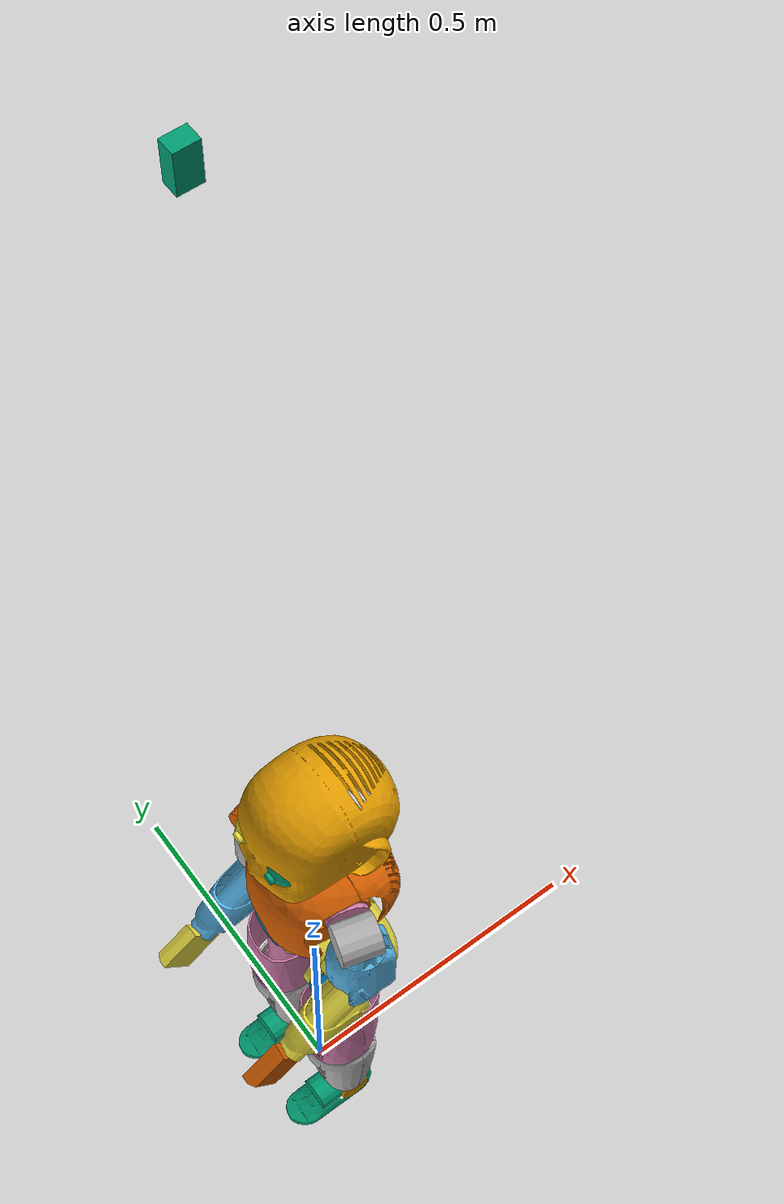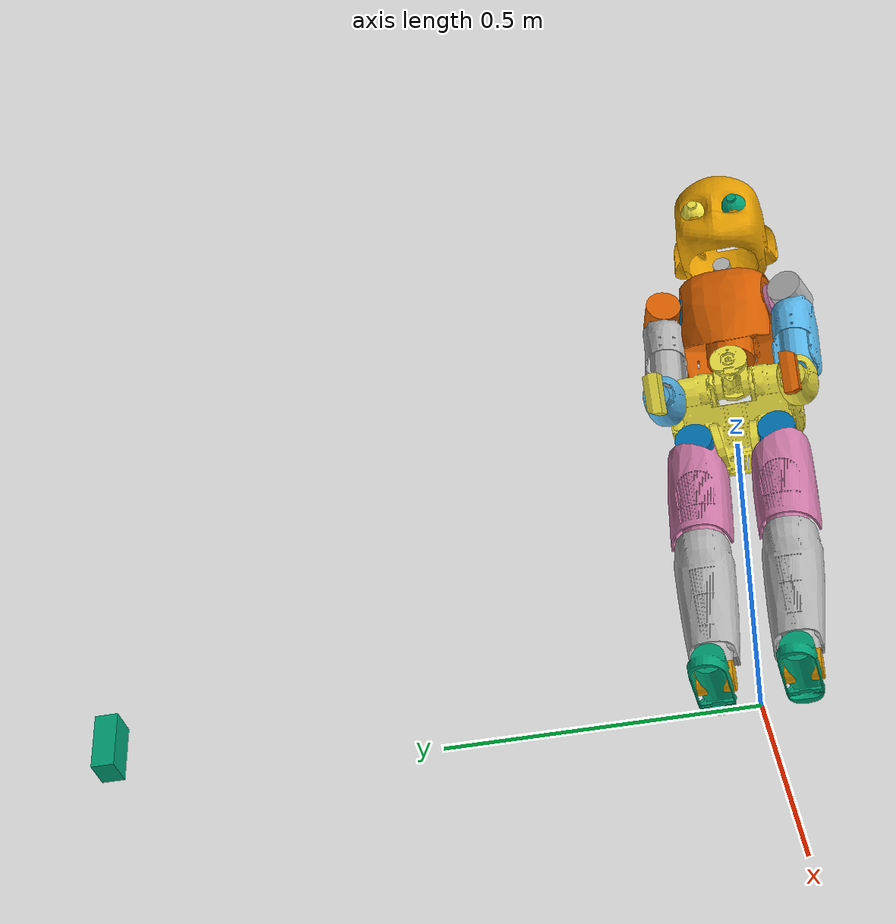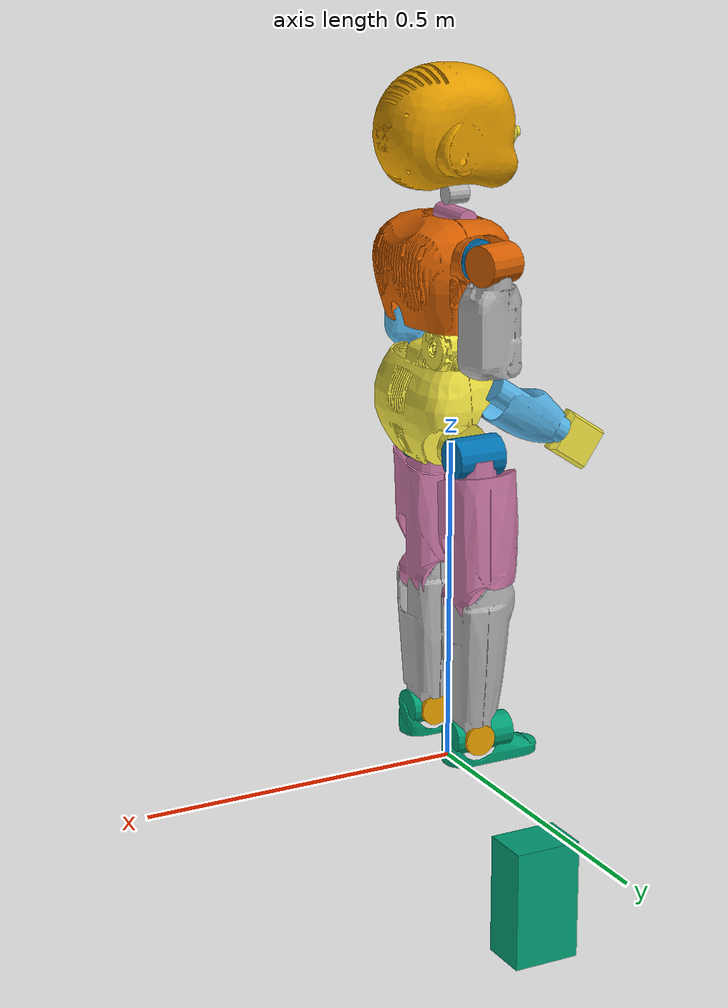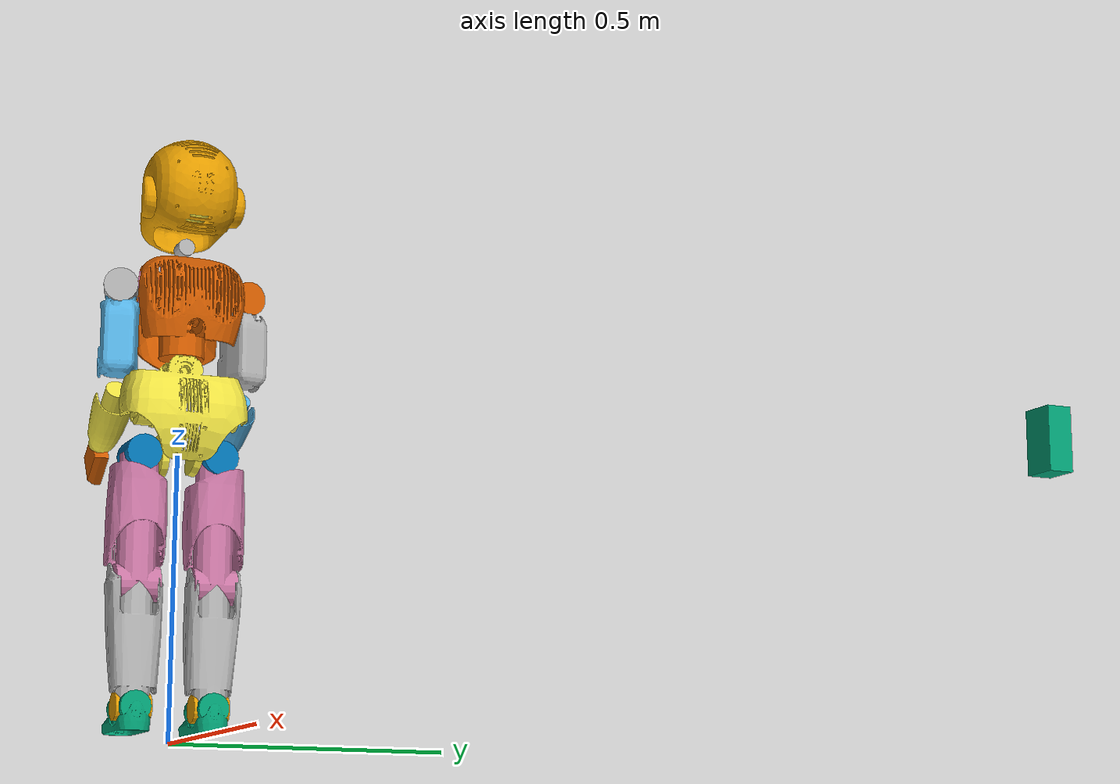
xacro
<?xml version="1.0"?>
<robot name="iCub"
       xmlns:xacro="http://www.ros.org/wiki/xacro">

  <!-- World for Gazebo simulation -->
  <link name ="world"/>
  <link name ="icub_base_link"/>
  <joint name="icub_base_joint" type="fixed">
      <parent link="world" />
      <child link = "icub_base_link" />
      <origin xyz="0 0 0" rpy="0 0 -1.57079" />
  </joint>

  <xacro:include filename="$(find demonstrator6_description)/urdf/icub/macro_icub.urdf.xacro" />
  <!-- instantiate with a base link to attach it to -->
  <xacro:icub parent="icub_base_link"/>

</robot>

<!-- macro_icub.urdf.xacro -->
<robot xmlns:xacro="http://ros.org/wiki/xacro">
  <xacro:macro name="icub" params="parent">
    <joint name="root_joint" type="fixed" >
      <origin xyz="0 0 0" rpy="0 0 0"/>
      <parent link="${parent}" />
      <child link="root_link" />
    </joint>
    <joint name="l_hip_pitch" type="revolute">
      <parent link="root_link"/>
      <child link="l_hip_1"/>
      <origin rpy="0       1.57079 -1.57079" xyz="0.0681  0   0.4971"/>
      <axis xyz="0 -1  0"/>
      <limit effort="84.0" lower="-0.767945" upper="2.30383" velocity="100.0"/>
    </joint>
    <joint name="l_hip_roll" type="revolute">
      <parent link="l_hip_1"/>
      <child link="l_hip_2"/>
      <origin rpy="1.20394 -1.57079  1.93764" xyz="0 0 0"/>
      <axis xyz="1 0 0"/>
      <limit effort="84.0" lower="-2.07694" upper="0.296706" velocity="100.0"/>
    </joint>
    <joint name="l_leg_ft_sensor" type="fixed">
      <parent link="l_hip_2"/>
      <child link="l_hip_3"/>
      <origin rpy="0 0 0" xyz="0     0     0.0665"/>
      <axis xyz="0 0 0"/>
      <limit effort="0.0" lower="0.0" upper="0.0" velocity="0.0"/>
    </joint>
    <joint name="l_hip_yaw" type="revolute">
      <parent link="l_hip_3"/>
      <child link="l_upper_leg"/>
      <origin rpy="-1.5708  0      0" xyz="0      0     -0.0665"/>
      <axis xyz="0 1 0"/>
      <limit effort="40.0" lower="-1.37881" upper="1.37881" velocity="100.0"/>
    </joint>
    <joint name="l_knee" type="revolute">
      <parent link="l_upper_leg"/>
      <child link="l_lower_leg"/>
      <origin rpy="3.14159 0      1.5708" xyz="0     -0.2236  0"/>
      <axis xyz="0  0 -1"/>
      <limit effort="30.0" lower="-2.18166" upper="0.401426" velocity="100.0"/>
    </joint>
    <joint name="l_ankle_pitch" type="revolute">
      <parent link="l_lower_leg"/>
      <child link="l_ankle_1"/>
      <origin rpy="-1.5708  0      0" xyz="-0.213  0     0"/>
      <axis xyz="0 -1  0"/>
      <limit effort="24.0" lower="-0.733038" upper="0.366519" velocity="100.0"/>
    </joint>
    <joint name="l_ankle_roll" type="revolute">
      <parent link="l_ankle_1"/>
      <child link="l_ankle_2"/>
      <origin rpy="-2.64933 -1.57078  2.64933" xyz="0 0 0"/>
      <axis xyz="1 0 0"/>
      <limit effort="11.0" lower="-0.418879" upper="0.418879" velocity="100.0"/>
    </joint>
    <joint name="l_foot_ft_sensor" type="fixed">
      <parent link="l_ankle_2"/>
      <child link="l_foot"/>
      <origin rpy="0 0 0" xyz="0    0    0.037"/>
      <axis xyz="0 0 0"/>
      <limit effort="0.0" lower="0.0" upper="0.0" velocity="0.0"/>
    </joint>
    <joint name="r_hip_pitch" type="revolute">
      <parent link="root_link"/>
      <child link="r_hip_1"/>
      <origin rpy="3.14159  1.57079 -1.57079" xyz="-0.0681  0   0.4971"/>
      <axis xyz="0 1 0"/>
      <limit effort="84.0" lower="-0.767945" upper="2.30383" velocity="100.0"/>
    </joint>
    <joint name="r_hip_roll" type="revolute">
      <parent link="r_hip_1"/>
      <child link="r_hip_2"/>
      <origin rpy="1.93764 1.57079 1.93764" xyz="0 0 0"/>
      <axis xyz="-1  0  0"/>
      <limit effort="84.0" lower="-2.07694" upper="0.296706" velocity="100.0"/>
    </joint>
    <joint name="r_leg_ft_sensor" type="fixed">
      <parent link="r_hip_2"/>
      <child link="r_hip_3"/>
      <origin rpy="0 0 0" xyz="0     0     0.0665"/>
      <axis xyz="0 0 0"/>
      <limit effort="0.0" lower="0.0" upper="0.0" velocity="0.0"/>
    </joint>
    <joint name="r_hip_yaw" type="revolute">
      <parent link="r_hip_3"/>
      <child link="r_upper_leg"/>
      <origin rpy="-1.5708  0      0" xyz="0      0     -0.0665"/>
      <axis xyz="0 -1  0"/>
      <limit effort="40.0" lower="-1.37881" upper="1.37881" velocity="100.0"/>
    </joint>
    <joint name="r_knee" type="revolute">
      <parent link="r_upper_leg"/>
      <child link="r_lower_leg"/>
      <origin rpy="3.14158 0      1.5708" xyz="0     -0.2236  0"/>
      <axis xyz="0  0 -1"/>
      <limit effort="30.0" lower="-2.18166" upper="0.401426" velocity="100.0"/>
    </joint>
    <joint name="r_ankle_pitch" type="revolute">
      <parent link="r_lower_leg"/>
      <child link="r_ankle_1"/>
      <origin rpy="1.5708 0     0" xyz="-0.213  0     0"/>
      <axis xyz="0 1 0"/>
      <limit effort="24.0" lower="-0.733038" upper="0.366519" velocity="100.0"/>
    </joint>
    <joint name="r_ankle_roll" type="revolute">
      <parent link="r_ankle_1"/>
      <child link="r_ankle_2"/>
      <origin rpy="-0.67357  1.57079  2.46801" xyz="0 0 0"/>
      <axis xyz="-1  0  0"/>
      <limit effort="11.0" lower="-0.418879" upper="0.418879" velocity="100.0"/>
    </joint>
    <joint name="r_foot_ft_sensor" type="fixed">
      <parent link="r_ankle_2"/>
      <child link="r_foot"/>
      <origin rpy="0 0 0" xyz="0    0    0.037"/>
      <axis xyz="0 0 0"/>
      <limit effort="0.0" lower="0.0" upper="0.0" velocity="0.0"/>
    </joint>
    <joint name="torso_pitch" type="revolute">
      <parent link="root_link"/>
      <child link="torso_1"/>
      <origin rpy="3.14159 -1.57079  1.57079" xyz="0  0  0.617"/>
      <axis xyz="0 1 0"/>
      <limit effort="36.0" lower="-0.383972" upper="1.46608" velocity="100.0"/>
    </joint>
    <joint name="torso_roll" type="revolute">
      <parent link="torso_1"/>
      <child link="torso_2"/>
      <origin rpy="1.57079  0      -1.5708" xyz="0.032 0    0"/>
      <axis xyz="0 1 0"/>
      <limit effort="80.0" lower="-0.680678" upper="0.680678" velocity="100.0"/>
    </joint>
    <joint name="torso_yaw" type="revolute">
      <parent link="torso_2"/>
      <child link="chest"/>
      <origin rpy="-1.57079  0      -1.5708" xyz="0     -0.0055  0"/>
      <axis xyz="0 -1  0"/>
      <limit effort="80.0" lower="-1.02974" upper="1.02974" velocity="100.0"/>
    </joint>
    <joint name="l_shoulder_pitch" type="revolute">
      <parent link="chest"/>
      <child link="l_shoulder_1"/>
      <origin rpy="1.30899 0      1.57079" xyz="0.00525  0.1433  -0.11026"/>
      <axis xyz="0 -1  0"/>
      <limit effort="84.0" lower="-1.65806" upper="0.0872665" velocity="100.0"/>
    </joint>
    <joint name="l_shoulder_roll" type="revolute">
      <parent link="l_shoulder_1"/>
      <child link="l_shoulder_2"/>
      <origin rpy="1.5708   0      -1.57079" xyz="0 0 0"/>
      <axis xyz="0 1 0"/>
      <limit effort="84.0" lower="0.0" upper="2.80649" velocity="100.0"/>
    </joint>
    <joint name="l_shoulder_yaw" type="revolute">
      <parent link="l_shoulder_2"/>
      <child link="l_shoulder_3"/>
      <origin rpy="0    0    1.309" xyz="0 0 0"/>
      <axis xyz="0 0 1"/>
      <limit effort="34.0" lower="-0.645772" upper="1.74533" velocity="100.0"/>
    </joint>
    <joint name="l_arm_ft_sensor" type="fixed">
      <parent link="l_shoulder_3"/>
      <child link="l_upper_arm"/>
      <origin rpy="0 0 0" xyz="0.015 0    0.068"/>
      <axis xyz="0 0 0"/>
      <limit effort="0.0" lower="0.0" upper="0.0" velocity="0.0"/>
    </joint>
    <joint name="l_elbow" type="revolute">
      <parent link="l_upper_arm"/>
      <child link="l_elbow_1"/>
      <origin rpy="0 0 0" xyz="0      0      0.08428"/>
      <axis xyz="0 1 0"/>
      <limit effort="20.0" lower="0.0959931" upper="1.85005" velocity="100.0"/>
    </joint>
    <joint name="l_wrist_prosup" type="revolute">
      <parent link="l_elbow_1"/>
      <child link="l_forearm"/>
      <origin rpy="1.57079  0      -1.5708" xyz="-0.015  0     0"/>
      <axis xyz="0 1 0"/>
      <limit effort="0.45" lower="-0.872665" upper="0.872665" velocity="100.0"/>
    </joint>
    <joint name="l_wrist_pitch" type="revolute">
      <parent link="l_forearm"/>
      <child link="l_wrist_1"/>
      <origin rpy="1.5708  0      1.57079" xyz="0     0.1373 0"/>
      <axis xyz="0 1 0"/>
      <limit effort="0.65" lower="-1.13446" upper="0.174533" velocity="100.0"/>
    </joint>
    <joint name="l_wrist_yaw" type="revolute">
      <parent link="l_wrist_1"/>
      <child link="l_hand"/>
      <origin rpy="0 0 0" xyz="0 0 0"/>
      <axis xyz="0 0 1"/>
      <limit effort="0.65" lower="-0.436332" upper="0.436332" velocity="100.0"/>
    </joint>
    <joint name="neck_pitch" type="revolute">
      <parent link="chest"/>
      <child link="neck_1"/>
      <origin rpy="1.57079 0      1.57079" xyz="0.00231 0.1933  0"/>
      <axis xyz="0 1 0"/>
      <limit effort="-1.0" lower="-0.698132" upper="0.523599" velocity="0.0"/>
    </joint>
    <joint name="neck_roll" type="revolute">
      <parent link="neck_1"/>
      <child link="neck_2"/>
      <origin rpy="-1.5708  0     -1.5708" xyz="0.0095 0     0"/>
      <axis xyz="0 -1  0"/>
      <limit effort="-1.0" lower="-1.22173" upper="1.0472" velocity="0.0"/>
    </joint>
    <joint name="neck_yaw" type="revolute">
      <parent link="neck_2"/>
      <child link="head"/>
      <origin rpy="-1.5708   0       1.57079" xyz="0 0 0"/>
      <axis xyz="0 -1  0"/>
      <limit effort="-1.0" lower="-0.959931" upper="0.959931" velocity="0.0"/>
    </joint>
    <joint name="eye_tilt" type="revolute">
      <parent link="head"/>
      <child link="eye_frame"/>
      <origin rpy="0 0 0" xyz="-0.04859 -0.11204  0"/>
      <axis xyz="0 0 1"/>
      <limit effort="-1.0" lower="-0.942477796" upper="0.942477796" velocity="0.0"/>
    </joint>
    <joint name="left_eye_pan" type="revolute">
      <parent link="eye_frame"/>
      <child link="left_eye"/>
      <origin rpy="0 0 0" xyz="0     0    -0.034"/>
      <axis xyz="0 -1  0"/>
      <limit effort="-1.0" lower="-0.942477796" upper="0.942477796" velocity="0.0"/>
    </joint>
    <joint name="right_eye_pan" type="revolute">
      <parent link="eye_frame"/>
      <child link="right_eye"/>
      <origin rpy="0 0 0" xyz="0    0    0.034"/>
      <axis xyz="0 -1  0"/>
      <limit effort="-1.0" lower="-0.942477796" upper="0.942477796" velocity="0.0"/>
    </joint>
    <joint name="r_shoulder_pitch" type="revolute">
      <parent link="chest"/>
      <child link="r_shoulder_1"/>
      <origin rpy="-1.30899  0       1.57079" xyz="0.00525 0.1433  0.11025"/>
      <axis xyz="0 1 0"/>
      <limit effort="84.0" lower="-1.65806" upper="0.0872665" velocity="100.0"/>
    </joint>
    <joint name="r_shoulder_roll" type="revolute">
      <parent link="r_shoulder_1"/>
      <child link="r_shoulder_2"/>
      <origin rpy="-1.57079  0      -1.57079" xyz="0 0 0"/>
      <axis xyz="0 -1  0"/>
      <limit effort="84.0" lower="0.0" upper="2.80649" velocity="100.0"/>
    </joint>
    <joint name="r_shoulder_yaw" type="revolute">
      <parent link="r_shoulder_2"/>
      <child link="r_shoulder_3"/>
      <origin rpy="3.14158 0      1.309" xyz="0 0 0"/>
      <axis xyz="0  0 -1"/>
      <limit effort="34.0" lower="-0.645772" upper="1.74533" velocity="100.0"/>
    </joint>
    <joint name="r_arm_ft_sensor" type="fixed">
      <parent link="r_shoulder_3"/>
      <child link="r_upper_arm"/>
      <origin rpy="0 0 0" xyz="0.015 0    0.068"/>
      <axis xyz="0 0 0"/>
      <limit effort="0.0" lower="0.0" upper="0.0" velocity="0.0"/>
    </joint>
    <joint name="r_elbow" type="revolute">
      <parent link="r_upper_arm"/>
      <child link="r_elbow_1"/>
      <origin rpy="3.14158 0      3.14159" xyz="0      0      0.08428"/>
      <axis xyz="0 1 0"/>
      <limit effort="20.0" lower="0.0959931" upper="1.85005" velocity="100.0"/>
    </joint>
    <joint name="r_wrist_prosup" type="revolute">
      <parent link="r_elbow_1"/>
      <child link="r_forearm"/>
      <origin rpy="1.57079  0      -1.5708" xyz="0.015 0    0"/>
      <axis xyz="0 1 0"/>
      <limit effort="0.45" lower="-0.872665" upper="0.872665" velocity="100.0"/>
    </joint>
    <joint name="r_wrist_pitch" type="revolute">
      <parent link="r_forearm"/>
      <child link="r_wrist_1"/>
      <origin rpy="1.5708  0      1.57079" xyz="0     -0.1373  0"/>
      <axis xyz="0 1 0"/>
      <limit effort="0.65" lower="-1.13446" upper="0.174533" velocity="100.0"/>
    </joint>
    <joint name="r_wrist_yaw" type="revolute">
      <parent link="r_wrist_1"/>
      <child link="r_hand"/>
      <origin rpy="0      0      3.14159" xyz="0 0 0"/>
      <axis xyz="0 0 1"/>
      <limit effort="0.65" lower="-0.436332" upper="0.436332" velocity="100.0"/>
    </joint>
    <link name="root_link">
      <inertial>
        <mass value="4.72"/>
        <origin rpy="0 0 0" xyz="0 0 0"/>
        <inertia ixx="0.01" ixy="0" ixz="0" iyy="0.01" iyz="0" izz="0.01"/>
      </inertial>
      <collision name="root_link_collision">
        <origin rpy="0      0      1.57079" xyz="-1.356  0.671  0.617"/>
        <geometry>
          <mesh filename="package://demonstrator6_description/meshes/collision/icub_simple_collision_root_link.dae" scale="1 1 1"/>
        </geometry>
      </collision>
      <visual name="root_link_visual">
        <origin rpy="0      0      1.57079" xyz="-1.356  0.671  0.617"/>
        <geometry>
          <mesh filename="package://demonstrator6_description/meshes/visual/icub_root_link.dae" scale="1 1 1"/>
        </geometry>
      </visual>
    </link>
    <link name="l_hip_1">
      <inertial>
        <mass value="0.754"/>
        <origin rpy="0 0 0" xyz="0     -0.0782  0"/>
        <inertia ixx="0.01" ixy="2.059e-06" ixz="1.451e-06" iyy="0.01" iyz="1.545e-06" izz="0.01"/>
      </inertial>
      <collision name="l_hip_1_collision">
        <origin rpy="-0.7854   1.57079 -2.35618" xyz="0 0 0"/>
        <geometry>
          <mesh filename="package://demonstrator6_description/meshes/collision/icub_simple_collision_l_hip_1.dae" scale="1 1 1"/>
        </geometry>
      </collision>
      <visual name="l_hip_1_visual">
        <origin rpy="-0.7854   1.57079 -2.35618" xyz="0 0 0"/>
        <geometry>
          <mesh filename="package://demonstrator6_description/meshes/visual/icub_l_hip_1.dae" scale="1 1 1"/>
        </geometry>
      </visual>
    </link>
    <link name="l_hip_2">
      <inertial>
        <mass value="0.526"/>
        <origin rpy="0 0 0" xyz="0      0      0.03045"/>
        <inertia ixx="0.01" ixy="-7.4e-08" ixz="1.0835e-05" iyy="0.01" iyz="-6.2e-08" izz="0.01"/>
      </inertial>
      <collision name="l_hip_2_collision">
        <origin rpy="0.78536 -1.57079  2.35623" xyz="0 0 0"/>
        <geometry>
          <mesh filename="package://demonstrator6_description/meshes/collision/icub_simple_collision_l_hip_2.dae" scale="1 1 1"/>
        </geometry>
      </collision>
      <visual name="l_hip_2_visual">
        <origin rpy="0.78536 -1.57079  2.35623" xyz="0 0 0"/>
        <geometry>
          <mesh filename="package://demonstrator6_description/meshes/visual/icub_l_hip_2.dae" scale="1 1 1"/>
        </geometry>
      </visual>
    </link>
    <link name="l_hip_3">
      <inertial>
        <mass value="0.1"/>
        <origin rpy="0 0 0" xyz="0 0 0"/>
        <inertia ixx="0.01" ixy="0" ixz="0" iyy="0.01" iyz="0" izz="0.01"/>
      </inertial>
    </link>
    <link name="l_upper_leg">
      <inertial>
        <mass value="20.175"/>
        <origin rpy="0 0 0" xyz="0.00144 -0.15942 -0.00039"/>
        <inertia ixx="100.01" ixy="-6.726e-05" ixz="2.267e-06" iyy="100.01" iyz="3.63726e-05" izz="100.01"/>
      </inertial>
      <collision name="l_upper_leg_collision">
        <origin rpy="-2.67797  1.57079 -1.10715" xyz="0 0 0"/>
        <geometry>
          <mesh filename="package://demonstrator6_description/meshes/collision/icub_simple_collision_l_thigh.dae" scale="1 1 1"/>
        </geometry>
      </collision>
      <visual name="l_upper_leg_visual">
        <origin rpy="-2.67797  1.57079 -1.10715" xyz="0 0 0"/>
        <geometry>
          <mesh filename="package://demonstrator6_description/meshes/visual/icub_l_thigh.dae" scale="1 1 1"/>
        </geometry>
      </visual>
    </link>
    <link name="l_lower_leg">
      <inertial>
        <mass value="10.264"/>
        <origin rpy="0 0 0" xyz="-0.1071   0.00182  0.00211"/>
        <inertia ixx="1000.01" ixy="-0.000185699" ixz="-6.3147e-05" iyy="1000.01" iyz="7.86e-07" izz="1000.01"/>
      </inertial>
      <collision name="l_lower_leg_collision">
        <origin rpy="-3.14159  0       1.5708" xyz="0 0 0"/>
        <geometry>
          <mesh filename="package://demonstrator6_description/meshes/collision/icub_simple_collision_l_shank.dae" scale="1 1 1"/>
        </geometry>
      </collision>
      <visual name="l_lower_leg_visual">
        <origin rpy="-3.14159  0       1.5708" xyz="0 0 0"/>
        <geometry>
          <mesh filename="package://demonstrator6_description/meshes/visual/icub_l_shank.dae" scale="1 1 1"/>
        </geometry>
      </visual>
    </link>
    <link name="l_ankle_1">
      <inertial>
        <mass value="100.746"/>
        <origin rpy="0 0 0" xyz="-0.0054   0.00163  0.0172"/>
        <inertia ixx="0.01" ixy="-7.081e-06" ixz="4.1421e-05" iyy="0.01" iyz="2.0817e-05" izz="0.01"/>
      </inertial>
      <collision name="l_ankle_1_collision">
        <origin rpy="1.5708 0     0" xyz="0 0 0"/>
        <geometry>
          <mesh filename="package://demonstrator6_description/meshes/collision/icub_simple_collision_l_ankle_1.dae" scale="1 1 1"/>
        </geometry>
      </collision>
      <visual name="l_ankle_1_visual">
        <origin rpy="1.5708 0     0" xyz="0 0 0"/>
        <geometry>
          <mesh filename="package://demonstrator6_description/meshes/visual/icub_l_ankle_1.dae" scale="1 1 1"/>
        </geometry>
      </visual>
    </link>
    <link name="l_ankle_2">
      <inertial>
        <mass value="100.2675"/>
        <origin rpy="0 0 0" xyz="0    0    0.037"/>
        <inertia ixx="0.01" ixy="0" ixz="0" iyy="0.01" iyz="0" izz="0.01"/>
      </inertial>
    </link>
    <link name="l_foot">
      <inertial>
        <mass value="1000.5935"/>
        <origin rpy="0 0 0" xyz="0.02406 -0.00061 -0.02841"/>
        <inertia ixx="1000.0" ixy="0.0" ixz="0.0" iyy="1000.0" iyz="0.0" izz="1000.0"/>
      </inertial>
      <collision name="l_foot_collision">
        <origin rpy="0 0 0" xyz="0.03  0   -0.01"/>
        <geometry>
          <box size="0.15 0.07 0.03"/>
        </geometry>
      </collision>
      <visual name="l_foot_visual">
        <origin rpy="-0.7854   1.57079 -0.7854" xyz="0     0    -0.037"/>
        <geometry>
          <mesh filename="package://demonstrator6_description/meshes/visual/icub_l_foot.dae" scale="1 1 1"/>
        </geometry>
      </visual>
    </link>
    <link name="r_hip_1">
      <inertial>
        <mass value="0.754"/>
        <origin rpy="0 0 0" xyz="0     -0.0782  0"/>
        <inertia ixx="0.01" ixy="0" ixz="0" iyy="0.01" iyz="0" izz="0.01"/>
      </inertial>
      <collision name="r_hip_1_collision">
        <origin rpy="1.76819 -1.57079  2.76109" xyz="0 0 0"/>
        <geometry>
          <mesh filename="package://demonstrator6_description/meshes/collision/icub_simple_collision_r_hip_1.dae" scale="1 1 1"/>
        </geometry>
      </collision>
      <visual name="r_hip_1_visual">
        <origin rpy="1.76819 -1.57079  2.76109" xyz="0 0 0"/>
        <geometry>
          <mesh filename="package://demonstrator6_description/meshes/visual/icub_r_hip_1.dae" scale="1 1 1"/>
        </geometry>
      </visual>
    </link>
    <link name="r_hip_2">
      <inertial>
        <mass value="0.526"/>
        <origin rpy="0 0 0" xyz="0      0      0.03045"/>
        <inertia ixx="0.01" ixy="0" ixz="0" iyy="0.01" iyz="0" izz="0.01"/>
      </inertial>
      <collision name="r_hip_2_collision">
        <origin rpy="-2.35627 -1.57079  2.35627" xyz="0 0 0"/>
        <geometry>
          <mesh filename="package://demonstrator6_description/meshes/collision/icub_simple_collision_r_hip_2.dae" scale="1 1 1"/>
        </geometry>
      </collision>
      <visual name="r_hip_2_visual">
        <origin rpy="-2.35627 -1.57079  2.35627" xyz="0 0 0"/>
        <geometry>
          <mesh filename="package://demonstrator6_description/meshes/visual/icub_r_hip_2.dae" scale="1 1 1"/>
        </geometry>
      </visual>
    </link>
    <link name="r_hip_3">
      <inertial>
        <mass value="0.1"/>
        <origin rpy="0 0 0" xyz="0 0 0"/>
        <inertia ixx="0.01" ixy="0" ixz="0" iyy="0.01" iyz="0" izz="0.01"/>
      </inertial>
    </link>
    <link name="r_upper_leg">
      <inertial>
        <mass value="20.175"/>
        <origin rpy="0 0 0" xyz="0.00144 -0.15942  0.00039"/>
        <inertia ixx="100.01" ixy="0" ixz="0" iyy="100.01" iyz="-2.71051e-20" izz="100.01"/>
      </inertial>
      <collision name="r_upper_leg_collision">
        <origin rpy="1.57087e+00 -1.57079e+00 -7.00000e-05" xyz="0 0 0"/>
        <geometry>
          <mesh filename="package://demonstrator6_description/meshes/collision/icub_simple_collision_r_thigh.dae" scale="1 1 1"/>
        </geometry>
      </collision>
      <visual name="r_upper_leg_visual">
        <origin rpy="1.57087e+00 -1.57079e+00 -7.00000e-05" xyz="0 0 0"/>
        <geometry>
          <mesh filename="package://demonstrator6_description/meshes/visual/icub_r_thigh.dae" scale="1 1 1"/>
        </geometry>
      </visual>
    </link>
    <link name="r_lower_leg">
      <inertial>
        <mass value="100.264"/>
        <origin rpy="0 0 0" xyz="-0.1071   0.00182 -0.00211"/>
        <inertia ixx="100.01" ixy="5.42101e-20" ixz="-5.42101e-20" iyy="100.01" iyz="8.47033e-22" izz="100.01"/>
      </inertial>
      <collision name="r_lower_leg_collision">
        <origin rpy="3.14159 0      1.5708" xyz="0 0 0"/>
        <geometry>
          <mesh filename="package://demonstrator6_description/meshes/collision/icub_simple_collision_r_shank.dae" scale="1 1 1"/>
        </geometry>
      </collision>
      <visual name="r_lower_leg_visual">
        <origin rpy="3.14159 0      1.5708" xyz="0 0 0"/>
        <geometry>
          <mesh filename="package://demonstrator6_description/meshes/visual/icub_r_shank.dae" scale="1 1 1"/>
        </geometry>
      </visual>
    </link>
    <link name="r_ankle_1">
      <inertial>
        <mass value="100.746"/>
        <origin rpy="0 0 0" xyz="-0.0054   0.00163 -0.0172"/>
        <inertia ixx="100.01" ixy="-1.69407e-21" ixz="1.35525e-20" iyy="100.01" iyz="3.38813e-21" izz="100.01"/>
      </inertial>
      <collision name="r_ankle_1_collision">
        <origin rpy="-1.5708  0      0" xyz="0 0 0"/>
        <geometry>
          <mesh filename="package://demonstrator6_description/meshes/collision/icub_simple_collision_r_ankle_1.dae" scale="1 1 1"/>
        </geometry>
      </collision>
      <visual name="r_ankle_1_visual">
        <origin rpy="-1.5708  0      0" xyz="0 0 0"/>
        <geometry>
          <mesh filename="package://demonstrator6_description/meshes/visual/icub_r_ankle_1.dae" scale="1 1 1"/>
        </geometry>
      </visual>
    </link>
    <link name="r_ankle_2">
      <inertial>
        <mass value="100.2675"/>
        <origin rpy="0 0 0" xyz="0    0    0.037"/>
        <inertia ixx="100.01" ixy="0" ixz="0" iyy="100.01" iyz="0" izz="100.01"/>
      </inertial>
    </link>
    <link name="r_foot">
      <inertial>
        <mass value="1000.5935"/>
        <origin rpy="0 0 0" xyz="0.02406  0.00061 -0.02841"/>
        <inertia ixx="1000.0" ixy="0.0" ixz="0.0" iyy="1000.0" iyz="0.0" izz="1000.0"/>
      </inertial>
      <collision name="r_foot_collision">
        <origin rpy="0 0 0" xyz="0.03  0   -0.01"/>
        <geometry>
          <box size="0.15 0.07 0.03"/>
        </geometry>
      </collision>
      <visual name="r_foot_visual">
        <origin rpy="-2.81983  1.57079  0.32176" xyz="0     0    -0.037"/>
        <geometry>
          <mesh filename="package://demonstrator6_description/meshes/visual/icub_r_foot.dae" scale="1 1 1"/>
        </geometry>
      </visual>
    </link>
    <link name="torso_1">
      <inertial>
        <mass value="0.1"/>
        <origin rpy="0 0 0" xyz="0 0 0"/>
        <inertia ixx="0.01" ixy="-4.263e-05" ixz="-3.889e-08" iyy="0.01" iyz="0" izz="0.01"/>
      </inertial>
      <collision name="torso_1_collision">
        <origin rpy="-1.5708  0      0" xyz="0 0 0"/>
        <geometry>
          <mesh filename="package://demonstrator6_description/meshes/collision/icub_simple_collision_lap_belt_1.dae" scale="1 1 1"/>
        </geometry>
      </collision>
      <visual name="torso_1_visual">
        <origin rpy="-1.5708  0      0" xyz="0 0 0"/>
        <geometry>
          <mesh filename="package://demonstrator6_description/meshes/visual/icub_lap_belt_1.dae" scale="1 1 1"/>
        </geometry>
      </visual>
    </link>
    <link name="torso_2">
      <inertial>
        <mass value="0.1"/>
        <origin rpy="0 0 0" xyz="0 0 0"/>
        <inertia ixx="0.01" ixy="-1.923e-06" ixz="5.095e-05" iyy="0.01" iyz="-3.849e-07" izz="0.01"/>
      </inertial>
    </link>
    <link name="chest">
      <inertial>
        <mass value="4.81"/>
        <origin rpy="0 0 0" xyz="0.00222 0.075   0"/>
        <inertia ixx="0.07472" ixy="-3.6e-06" ixz="-4.705e-05" iyy="0.08145" iyz="0.004567" izz="0.01306"/>
      </inertial>
      <collision name="chest_collision">
        <origin rpy="-1.10717 -1.57079  2.67798" xyz="-0.0055  0      0"/>
        <geometry>
          <mesh filename="package://demonstrator6_description/meshes/collision/icub_simple_collision_chest.dae" scale="1 1 1"/>
        </geometry>
      </collision>
      <visual name="chest_visual">
        <origin rpy="-1.10717 -1.57079  2.67798" xyz="-0.0055  0      0"/>
        <geometry>
          <mesh filename="package://demonstrator6_description/meshes/visual/icub_chest.dae" scale="1 1 1"/>
        </geometry>
      </visual>
    </link>
    <link name="l_shoulder_1">
      <inertial>
        <mass value="0.189"/>
        <origin rpy="0 0 0" xyz="0       0.0187  -0.00119"/>
        <inertia ixx="0.01" ixy="9e-09" ixz="0" iyy="0.01" iyz="-1.7e-08" izz="0.01"/>
      </inertial>
      <collision name="l_shoulder_1_collision">
        <origin rpy="-0.30106  1.57079 -1.87186" xyz="0       0.10928 -0.00521"/>
        <geometry>
          <mesh filename="package://demonstrator6_description/meshes/collision/icub_simple_collision_l_shoulder_1.dae" scale="1 1 1"/>
        </geometry>
      </collision>
      <visual name="l_shoulder_1_visual">
        <origin rpy="-0.30106  1.57079 -1.87186" xyz="0       0.10928 -0.00521"/>
        <geometry>
          <mesh filename="package://demonstrator6_description/meshes/visual/icub_l_shoulder_1.dae" scale="1 1 1"/>
        </geometry>
      </visual>
    </link>
    <link name="l_shoulder_2">
      <inertial>
        <mass value="0.179"/>
        <origin rpy="0 0 0" xyz="9.00e-05 -6.27e-03  1.66e-02"/>
        <inertia ixx="0.01" ixy="4.66e-07" ixz="3.65e-07" iyy="0.01" iyz="-2.0524e-05" izz="0.01"/>
      </inertial>
      <collision name="l_shoulder_2_collision">
        <origin rpy="-2.14033  1.57079 -0.56953" xyz="-0.00154 -0.00521  0"/>
        <geometry>
          <mesh filename="package://demonstrator6_description/meshes/collision/icub_simple_collision_l_shoulder_2.dae" scale="1 1 1"/>
        </geometry>
      </collision>
      <visual name="l_shoulder_2_visual">
        <origin rpy="-2.14033  1.57079 -0.56953" xyz="-0.00154 -0.00521  0"/>
        <geometry>
          <mesh filename="package://demonstrator6_description/meshes/visual/icub_l_shoulder_2.dae" scale="1 1 1"/>
        </geometry>
      </visual>
    </link>
    <link name="l_shoulder_3">
      <inertial>
        <mass value="0.156157"/>
        <origin rpy="0 0 0" xyz="5.590e-03 9.000e-05 5.013e-02"/>
        <inertia ixx="0.01" ixy="-5.662e-08" ixz="-4.3618e-06" iyy="0.01" iyz="-7.42844e-07" izz="0.01"/>
      </inertial>
    </link>
    <link name="l_upper_arm">
      <inertial>
        <mass value="0.727843"/>
        <origin rpy="0 0 0" xyz="-1.50e-04 -9.00e-05  2.98e-02"/>
        <inertia ixx="0.01" ixy="-1.08e-06" ixz="-2.29e-06" iyy="0.01" iyz="3.57e-06" izz="0.01"/>
      </inertial>
      <collision name="l_upper_arm_collision">
        <origin rpy="0     0    -1.309" xyz="-0.02043  0.00014 -0.068"/>
        <geometry>
          <mesh filename="package://demonstrator6_description/meshes/collision/icub_simple_collision_l_arm.dae" scale="1 1 1"/>
        </geometry>
      </collision>
      <visual name="l_upper_arm_visual">
        <origin rpy="0     0    -1.309" xyz="-0.02043  0.00014 -0.068"/>
        <geometry>
          <mesh filename="package://demonstrator6_description/meshes/visual/icub_l_arm.dae" scale="1 1 1"/>
        </geometry>
      </visual>
    </link>
    <link name="l_elbow_1">
      <inertial>
        <mass value="0.1"/>
        <origin rpy="0 0 0" xyz="-0.0013   0.00371 -0.00105"/>
        <inertia ixx="0.01" ixy="-5.15e-07" ixz="-4.08e-07" iyy="0.01" iyz="-3.71e-07" izz="0.01"/>
      </inertial>
    </link>
    <link name="l_forearm">
      <inertial>
        <mass value="0.525"/>
        <origin rpy="0 0 0" xyz="0.00034 0.066   0.00476"/>
        <inertia ixx="0.01" ixy="4.337e-06" ixz="2.39e-07" iyy="0.01" iyz="1.9381e-05" izz="0.01"/>
      </inertial>
      <collision name="l_forearm_collision">
        <origin rpy="-2.66395  1.57079 -1.09315" xyz="-0.00014  0       0.02043"/>
        <geometry>
          <mesh filename="package://demonstrator6_description/meshes/collision/icub_simple_collision_l_forearm.dae" scale="1 1 1"/>
        </geometry>
      </collision>
      <visual name="l_forearm_visual">
        <origin rpy="-2.66395  1.57079 -1.09315" xyz="-0.00014  0       0.02043"/>
        <geometry>
          <mesh filename="package://demonstrator6_description/meshes/visual/icub_l_forearm.dae" scale="1 1 1"/>
        </geometry>
      </visual>
    </link>
    <link name="l_wrist_1">
      <inertial>
        <mass value="0.1"/>
        <origin rpy="0 0 0" xyz="0 0 0"/>
        <inertia ixx="0.01" ixy="0" ixz="0" iyy="0.01" iyz="0" izz="0.01"/>
      </inertial>
    </link>
    <link name="l_hand">
      <inertial>
        <mass value="0.213"/>
        <origin rpy="0 0 0" xyz="0.07023 -0.00805 -0.007"/>
        <inertia ixx="1.01" ixy="1.278e-05" ixz="4.823e-06" iyy="1.01" iyz="-1.8188e-05" izz="1.01"/>
      </inertial>
      <collision name="l_hand_collision">
        <origin rpy="0 0 0" xyz="0       0.02043 -0.00014"/>
        <geometry>
          <mesh filename="package://demonstrator6_description/meshes/collision/icub_simple_collision_l_hand.dae" scale="1 1 1"/>
        </geometry>
      </collision>
      <visual name="l_hand_visual">
        <origin rpy="0 0 0" xyz="0       0.02043 -0.00014"/>
        <geometry>
          <mesh filename="package://demonstrator6_description/meshes/visual/icub_l_hand.dae" scale="1 1 1"/>
        </geometry>
      </visual>
    </link>
    <link name="neck_1">
      <inertial>
        <mass value="0.1"/>
        <origin rpy="0 0 0" xyz="0 0 0"/>
        <inertia ixx="0.01" ixy="0" ixz="0" iyy="0.01" iyz="0" izz="0.01"/>
      </inertial>
      <collision name="neck_1_collision">
        <origin rpy="3.14159 -1.57079  1.5708" xyz="0      0     -0.0055"/>
        <geometry>
          <mesh filename="package://demonstrator6_description/meshes/collision/icub_simple_collision_neck_1.dae" scale="1 1 1"/>
        </geometry>
      </collision>
      <visual name="neck_1_visual">
        <origin rpy="3.14159 -1.57079  1.5708" xyz="0      0     -0.0055"/>
        <geometry>
          <mesh filename="package://demonstrator6_description/meshes/visual/icub_neck_1.dae" scale="1 1 1"/>
        </geometry>
      </visual>
    </link>
    <link name="neck_2">
      <inertial>
        <mass value="0.1"/>
        <origin rpy="0 0 0" xyz="0 0 0"/>
        <inertia ixx="0.01" ixy="0" ixz="0" iyy="0.01" iyz="0" izz="0.01"/>
      </inertial>
      <collision name="neck_2_collision">
        <origin rpy="-3.14157 -1.57079 -1.57082" xyz="0     0.0055 0.0235"/>
        <geometry>
          <mesh filename="package://demonstrator6_description/meshes/collision/icub_simple_collision_neck_2.dae" scale="1 1 1"/>
        </geometry>
      </collision>
      <visual name="neck_2_visual">
        <origin rpy="-3.14157 -1.57079 -1.57082" xyz="0     0.0055 0.0235"/>
        <geometry>
          <mesh filename="package://demonstrator6_description/meshes/visual/icub_neck_2.dae" scale="1 1 1"/>
        </geometry>
      </visual>
    </link>
    <link name="head">
      <inertial>
        <mass value="3"/>
        <origin rpy="0 0 0" xyz="0.0185 -0.1108  0"/>
        <inertia ixx="0.01" ixy="0" ixz="0" iyy="0.01" iyz="0" izz="0.01"/>
      </inertial>
      <collision name="head_collision">
        <origin rpy="-1.32582  1.57079 -2.89662" xyz="0.00449 -0.0235   0"/>
        <geometry>
          <mesh filename="package://demonstrator6_description/meshes/collision/icub_simple_collision_head.dae" scale="1 1 1"/>
        </geometry>
      </collision>
      <visual name="head_visual">
        <origin rpy="-1.32582  1.57079 -2.89662" xyz="0.00449 -0.0235   0"/>
        <geometry>
          <mesh filename="package://demonstrator6_description/meshes/visual/icub_head.dae" scale="1 1 1"/>
        </geometry>
      </visual>
    </link>
    <link name="eye_frame">
      <inertial>
        <mass value="0.5"/>
        <origin rpy="0 0 0" xyz="0 0 0"/>
        <inertia ixx="0.01" ixy="0" ixz="0" iyy="0.01" iyz="0" izz="0.01"/>
      </inertial>
      <collision name="eye_frame_collision">
        <origin rpy="0 0 0" xyz="0 0 0"/>
        <geometry>
          <sphere radius=".005"/>
        </geometry>
      </collision>
      <visual name="eye_frame_visual">
        <origin rpy="0 0 0" xyz="0 0 0"/>
        <geometry>
          <sphere radius=".005"/>
        </geometry>
      </visual>
    </link>
    <link name="left_eye">
      <inertial>
        <mass value="0.5"/>
        <origin rpy="0 0 0" xyz="0 0 0"/>
        <inertia ixx="0.01" ixy="0" ixz="0" iyy="0.01" iyz="0" izz="0.01"/>
      </inertial>
      <collision name="left_eye_collision">
        <origin rpy="0 0 0" xyz="0 0 0"/>
        <geometry>
          <sphere radius=".0245"/>
        </geometry>
      </collision>
      <collision name="left_pupil_collision">
        <origin rpy="1.5707 0     1.5707" xyz="-0.0245  0      0"/>
        <geometry>
          <cylinder length=".008" radius=".008"/>
        </geometry>
      </collision>
      <visual name="left_eye_visual">
        <origin rpy="0 0 0" xyz="0 0 0"/>
        <geometry>
          <sphere radius=".0245"/>
        </geometry>
      </visual>
      <visual name="left_pupil_visual">
        <origin rpy="1.5707 0     1.5707" xyz="-0.0245  0      0"/>
        <geometry>
          <cylinder length=".008" radius=".008"/>
        </geometry>
      </visual>
    </link>
    <link name="right_eye">
      <inertial>
        <mass value="0.5"/>
        <origin rpy="0 0 0" xyz="0 0 0"/>
        <inertia ixx="0.01" ixy="0" ixz="0" iyy="0.01" iyz="0" izz="0.01"/>
      </inertial>
      <collision name="right_eye_collision">
        <origin rpy="0 0 0" xyz="0 0 0"/>
        <geometry>
          <sphere radius=".0245"/>
        </geometry>
      </collision>
      <collision name="right_pupil_collision">
        <origin rpy="1.5707 0     1.5707" xyz="-0.0245  0      0"/>
        <geometry>
          <cylinder length=".008" radius=".008"/>
        </geometry>
      </collision>
      <visual name="right_eye_visual">
        <origin rpy="0 0 0" xyz="0 0 0"/>
        <geometry>
          <sphere radius=".0245"/>
        </geometry>
      </visual>
      <visual name="right_pupil_visual">
        <origin rpy="1.5707 0     1.5707" xyz="-0.0245  0      0"/>
        <geometry>
          <cylinder length=".008" radius=".008"/>
        </geometry>
      </visual>
    </link>
    <link name="r_shoulder_1">
      <inertial>
        <mass value="0.189"/>
        <origin rpy="0 0 0" xyz="0      0.0187  0.00119"/>
        <inertia ixx="0.01" ixy="2.1e-08" ixz="-1e-09" iyy="0.01" iyz="4.22e-06" izz="0.01"/>
      </inertial>
      <collision name="r_shoulder_1_collision">
        <origin rpy="3.06003  1.57079 -1.65235" xyz="0      0.10928 0.00521"/>
        <geometry>
          <mesh filename="package://demonstrator6_description/meshes/collision/icub_simple_collision_r_shoulder_1.dae" scale="1 1 1"/>
        </geometry>
      </collision>
      <visual name="r_shoulder_1_visual">
        <origin rpy="3.06003  1.57079 -1.65235" xyz="0      0.10928 0.00521"/>
        <geometry>
          <mesh filename="package://demonstrator6_description/meshes/visual/icub_r_shoulder_1.dae" scale="1 1 1"/>
        </geometry>
      </visual>
    </link>
    <link name="r_shoulder_2">
      <inertial>
        <mass value="0.179"/>
        <origin rpy="0 0 0" xyz="-9.00e-05 -6.27e-03 -1.66e-02"/>
        <inertia ixx="0.01" ixy="-4.53e-07" ixz="2.03e-07" iyy="0.01" iyz="2.07e-05" izz="0.01"/>
      </inertial>
      <collision name="r_shoulder_2_collision">
        <origin rpy="-1.00125 -1.57079  2.57205" xyz="-0.00154 -0.00521  0"/>
        <geometry>
          <mesh filename="package://demonstrator6_description/meshes/collision/icub_simple_collision_r_shoulder_2.dae" scale="1 1 1"/>
        </geometry>
      </collision>
      <visual name="r_shoulder_2_visual">
        <origin rpy="-1.00125 -1.57079  2.57205" xyz="-0.00154 -0.00521  0"/>
        <geometry>
          <mesh filename="package://demonstrator6_description/meshes/visual/icub_r_shoulder_2.dae" scale="1 1 1"/>
        </geometry>
      </visual>
    </link>
    <link name="r_shoulder_3">
      <inertial>
        <mass value="0.155"/>
        <origin rpy="0 0 0" xyz="5.530e-03 -2.000e-05  4.939e-02"/>
        <inertia ixx="0.01" ixy="3.56977e-07" ixz="-3.95372e-06" iyy="0.01" iyz="-6.5128e-06" izz="0.01"/>
      </inertial>
    </link>
    <link name="r_upper_arm">
      <inertial>
        <mass value="0.729"/>
        <origin rpy="0 0 0" xyz="-1.500e-04  8.000e-05  2.988e-02"/>
        <inertia ixx="0.01" ixy="-1.08e-06" ixz="-2.29e-06" iyy="0.01" iyz="3.57e-06" izz="0.01"/>
      </inertial>
      <collision name="r_upper_arm_collision">
        <origin rpy="-3.14159  0       1.309" xyz="-0.02043 -0.00014 -0.068"/>
        <geometry>
          <mesh filename="package://demonstrator6_description/meshes/collision/icub_simple_collision_r_arm.dae" scale="1 1 1"/>
        </geometry>
      </collision>
      <visual name="r_upper_arm_visual">
        <origin rpy="-3.14159  0       1.309" xyz="-0.02043 -0.00014 -0.068"/>
        <geometry>
          <mesh filename="package://demonstrator6_description/meshes/visual/icub_r_arm.dae" scale="1 1 1"/>
        </geometry>
      </visual>
    </link>
    <link name="r_elbow_1">
      <inertial>
        <mass value="0.1"/>
        <origin rpy="0 0 0" xyz="0.0013  -0.00371  0.00105"/>
        <inertia ixx="0.01" ixy="-5.02e-07" ixz="-3.99e-07" iyy="0.01" iyz="-3.71e-07" izz="0.01"/>
      </inertial>
    </link>
    <link name="r_forearm">
      <inertial>
        <mass value="0.525"/>
        <origin rpy="0 0 0" xyz="-0.00034 -0.066   -0.00476"/>
        <inertia ixx="0.01" ixy="5.66e-06" ixz="1.4e-06" iyy="0.01" iyz="1.82e-05" izz="0.01"/>
      </inertial>
      <collision name="r_forearm_collision">
        <origin rpy="-1.74165  1.57079 -0.17086" xyz="0.00014  0      -0.02043"/>
        <geometry>
          <mesh filename="package://demonstrator6_description/meshes/collision/icub_simple_collision_r_forearm.dae" scale="1 1 1"/>
        </geometry>
      </collision>
      <visual name="r_forearm_visual">
        <origin rpy="-1.74165  1.57079 -0.17086" xyz="0.00014  0      -0.02043"/>
        <geometry>
          <mesh filename="package://demonstrator6_description/meshes/visual/icub_r_forearm.dae" scale="1 1 1"/>
        </geometry>
      </visual>
    </link>
    <link name="r_wrist_1">
      <inertial>
        <mass value="0.1"/>
        <origin rpy="0 0 0" xyz="0 0 0"/>
        <inertia ixx="0.01" ixy="0" ixz="0" iyy="0.01" iyz="0" izz="0.01"/>
      </inertial>
    </link>
    <link name="r_hand">
      <inertial>
        <mass value="0.213"/>
        <origin rpy="0 0 0" xyz="0.07023 -0.00805  0.007"/>
        <inertia ixx="0.01" ixy="1.26e-05" ixz="-6.08e-06" iyy="0.01" iyz="1.76e-05" izz="0.01"/>
      </inertial>
      <collision name="r_hand_collision">
        <origin rpy="0       0      -3.14159" xyz="0      0.02043 0.00014"/>
        <geometry>
          <mesh filename="package://demonstrator6_description/meshes/collision/icub_simple_collision_r_hand.dae" scale="1 1 1"/>
        </geometry>
      </collision>
      <visual name="r_hand_visual">
        <origin rpy="0       0      -3.14159" xyz="0      0.02043 0.00014"/>
        <geometry>
          <mesh filename="package://demonstrator6_description/meshes/visual/icub_r_hand.dae" scale="1 1 1"/>
        </geometry>
      </visual>
    </link>
    <gazebo>
      <plugin name="ROSController_iCub" filename="libcontroller_ros_gazebo_icub.so"/>
      <plugin name="InitiCub" filename="libicub_initialization.so"/>
      <plugin name="gazebo_ros_control" filename="libgazebo_ros_control.so">
        <robotNamespace>/icub</robotNamespace>
      </plugin>
    </gazebo>
  </xacro:macro>
</robot>
